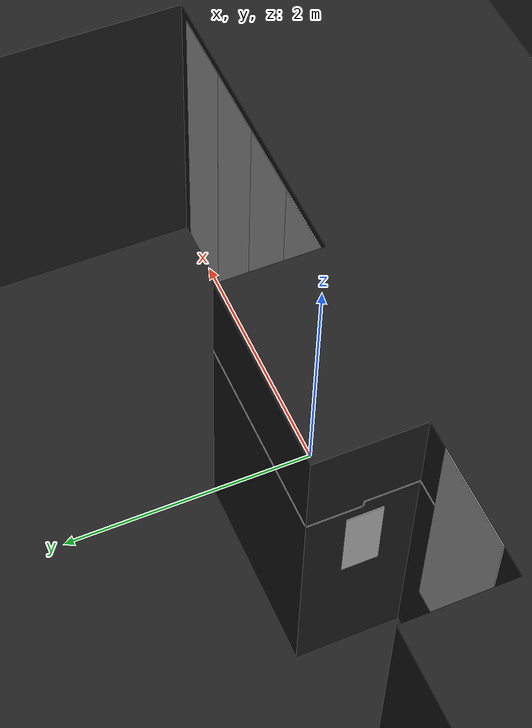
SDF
<sdf version="1.4">
 <world name="default">
  <light name="sun" type="directional">
   <pose>-1 -1 1.5 0 -0 0</pose>
   <diffuse>0.8 0.8 0.8 1</diffuse>
   <specular>0.2 0.2 0.2 1</specular>
   <attenuation>
    <range>1000</range>
    <constant>0.9</constant>
    <linear>0.01</linear>
    <quadratic>0.001</quadratic>
   </attenuation>
   <direction>-0.5 0 -1</direction>
  </light>
  <model name="ground_plane">
   <static>1</static>
   <link name="link">
    <collision name="collision">
     <geometry><plane><normal>0 0 1</normal><size>100 100</size></plane></geometry>
     <surface><friction><ode><mu>100</mu><mu2>50</mu2></ode></friction></surface>
    </collision>
    <visual name="visual">
     <cast_shadows>0</cast_shadows>
     <geometry><plane><normal>0 0 1</normal><size>100 100</size></plane></geometry>
     <material>
      <script><uri>file://media/materials/scripts/gazebo.material</uri><name>Gazebo/Black</name></script>
     </material>
    </visual>
    <velocity_decay><linear>0</linear><angular>0</angular></velocity_decay>
    <gravity>0</gravity>
   </link>
  </model>
  <physics type="ode">
   <max_step_size>0.1</max_step_size>
   <real_time_factor>1</real_time_factor>
   <real_time_update_rate>10</real_time_update_rate>
   <max_contacts>3</max_contacts>
   <gravity>0 0 -9.8</gravity>
   <ode><solver><min_step_size>0.1</min_step_size><iters>1</iters></solver></ode>
  </physics>
  <scene><ambient>0.4 0.4 0.4 1</ambient><background>0.7 0.7 0.7 1</background><shadows>1</shadows></scene>
  <model name="lab_with_windows_2">
   <static>1</static>
   <link name="link">
    <inertial><mass>1000</mass></inertial>
    <visual name="visual">
     <geometry><mesh><uri>model://lab_with_windows/meshes/lab_with_windows.stl</uri></mesh></geometry>
     <material>
      <script><uri>file://media/materials/scripts/gazebo.material</uri><name>Gazebo/Black</name></script>
     </material>
    </visual>
    <velocity_decay><linear>0</linear><angular>0</angular></velocity_decay>
    <gravity>0</gravity>
   </link>
  </model>
  <model name="fire_hose_reel">
   <static>1</static>
   <link name="link">
    <visual name="visual">
     <geometry><box><size>1.763 0.732 0.007</size></box></geometry>
     <material>
      <script>
       <uri>model://fire_hose_reel/materials/scripts</uri>
       <uri>model://fire_hose_reel/materials/textures</uri>
       <name>fire_hose_reel</name>
      </script>
     </material>
    </visual>
    <velocity_decay><linear>0</linear><angular>0</angular></velocity_decay>
    <gravity>0</gravity>
   </link>
   <pose>-2.07295 0.003277 1.62 0.000283 -1.57079 1.57108</pose>
  </model>
  <model name="fire_extinguisher_drawing">
   <pose>-1.503 0.380286 1.37 -0.000425 -1.5707 -3.1415</pose>
   <static>1</static>
   <link name="link">
    <visual name="visual">
     <cast_shadows>0</cast_shadows>
     <geometry><box><size>0.63 0.27 0.007</size></box></geometry>
     <material>
      <script>
       <uri>model://fire_extinguisher_drawing/materials/scripts</uri>
       <uri>model://fire_extinguisher_drawing/materials/textures</uri>
       <name>fire_extinguisher_drawing</name>
      </script>
     </material>
    </visual>
    <velocity_decay><linear>0</linear><angular>0</angular></velocity_decay>
   </link>
  </model>
  <model name="dot_grid">
   <pose>0.002252 0.309368 1.22 0 1.5707 0</pose>
   <static>1</static>
   <link name="link">
    <visual name="visual">
     <cast_shadows>0</cast_shadows>
     <geometry><box><size>2.4 0.6 0.007</size></box></geometry>
     <material>
      <script>
       <uri>model://dot_grid/materials/scripts</uri>
       <uri>model://dot_grid/materials/textures</uri>
       <name>dot_grid</name>
      </script>
     </material>
    </visual>
    <velocity_decay><linear>0</linear><angular>0</angular></velocity_decay>
   </link>
  </model>
  <model name="dot_grid_0">
   <static>1</static>
   <link name="link">
    <visual name="visual">
     <cast_shadows>0</cast_shadows>
     <geometry><box><size>2.4 0.6 0.007</size></box></geometry>
     <material>
      <script>
       <uri>model://dot_grid/materials/scripts</uri>
       <uri>model://dot_grid/materials/textures</uri>
       <name>dot_grid</name>
      </script>
     </material>
    </visual>
    <velocity_decay><linear>0</linear><angular>0</angular></velocity_decay>
   </link>
   <pose>0.308878 0.002476 1.22 0.000572 -1.5707 1.57013</pose>
  </model>
  <model name="dot_grid_1">
   <pose>0.908878 -0.000314 1.22 0.000572 -1.5707 1.57013</pose>
   <static>1</static>
   <link name="link">
    <visual name="visual">
     <cast_shadows>0</cast_shadows>
     <geometry><box><size>2.4 0.6 0.007</size></box></geometry>
     <material>
      <script>
       <uri>model://dot_grid/materials/scripts</uri>
       <uri>model://dot_grid/materials/textures</uri>
       <name>dot_grid</name>
      </script>
     </material>
    </visual>
    <velocity_decay><linear>0</linear><angular>0</angular></velocity_decay>
   </link>
  </model>
  <model name="dot_grid_2">
   <pose>1.50888 -0.000314 1.22 0.000572 -1.5707 1.57013</pose>
   <static>1</static>
   <link name="link">
    <visual name="visual">
     <cast_shadows>0</cast_shadows>
     <geometry><box><size>2.4 0.6 0.007</size></box></geometry>
     <material>
      <script>
       <uri>model://dot_grid/materials/scripts</uri>
       <uri>model://dot_grid/materials/textures</uri>
       <name>dot_grid</name>
      </script>
     </material>
    </visual>
    <velocity_decay><linear>0</linear><angular>0</angular></velocity_decay>
   </link>
  </model>
  <model name="dot_grid_3">
   <pose>2.10888 -0.000314 1.22 0.000572 -1.5707 1.57013</pose>
   <static>1</static>
   <link name="link">
    <visual name="visual">
     <cast_shadows>0</cast_shadows>
     <geometry><box><size>2.4 0.6 0.007</size></box></geometry>
     <material>
      <script>
       <uri>model://dot_grid/materials/scripts</uri>
       <uri>model://dot_grid/materials/textures</uri>
       <name>dot_grid</name>
      </script>
     </material>
    </visual>
    <velocity_decay><linear>0</linear><angular>0</angular></velocity_decay>
   </link>
  </model>
  <model name="wall_pipe">
   <pose>0.001361 0.806656 1.78 1.5707 -5.55112e-17 -1.5707</pose>
   <static>1</static>
   <link name="link">
    <inertial><mass>10</mass></inertial>
    <visual name="visual">
     <transparency>0.2</transparency>
     <geometry><mesh><uri>model://wall_pipe/meshes/wall_pipe.stl</uri></mesh></geometry>
    </visual>
    <velocity_decay><linear>0</linear><angular>0</angular></velocity_decay>
   </link>
  </model>
  <spherical_coordinates>
   <surface_model>EARTH_WGS84</surface_model>
   <latitude_deg>0</latitude_deg>
   <longitude_deg>0</longitude_deg>
   <elevation>0</elevation>
   <heading_deg>0</heading_deg>
  </spherical_coordinates>
  <model name="camera_projection_mapping">
   <link name="projector_link">
    <inertial>
     <mass>1</mass>
     <inertia><ixx>0.1</ixx><ixy>0</ixy><ixz>0</ixz><iyy>0.1</iyy><iyz>0</iyz><izz>0.1</izz></inertia>
    </inertial>
    <visual name="projector_link_visual">
     <geometry><box><size>0.2 0.1 0.4</size></box></geometry>
     <material><script><name>Gazebo/Wood</name><uri>__default__</uri></script></material>
    </visual>
    <velocity_decay><linear>0</linear><angular>0</angular></velocity_decay>
    <sensor name="virtual_camera" type="camera">
     <camera name="projector_head">
      <horizontal_fov>0.812196</horizontal_fov>
      <image><width>1280</width><height>800</height><format>R8G8B8</format></image>
      <clip><near>0.05</near><far>25</far></clip>
      <noise><type>gaussian</type><mean>0</mean><stddev>0</stddev></noise>
     </camera>
     <plugin name="camera_controller" filename="libgazebo_ros_camera.so">
      <alwaysOn>true</alwaysOn>
      <updateRate>30.0</updateRate>
      <cameraName>virtual_camera</cameraName>
      <imageTopicName>image_raw</imageTopicName>
      <cameraInfoTopicName>camera_info</cameraInfoTopicName>
      <frameName>camera_link</frameName>
      <CxPrime>644</CxPrime>
      <Cx>644</Cx>
      <Cy>630</Cy>
      <focalLength>389</focalLength>
      <hackBaseline>0.07</hackBaseline>
      <distortionK1>0</distortionK1>
      <distortionK2>0</distortionK2>
      <distortionK3>0</distortionK3>
      <distortionT1>0</distortionT1>
      <distortionT2>0</distortionT2>
      <robotNamespace>/</robotNamespace>
     </plugin>
    </sensor>
   </link>
   <static>1</static>
   <pose>2.91183 1.15101 0.525 3.14159 0.28 -1.9273</pose>
  </model>
 </world>
</sdf>
